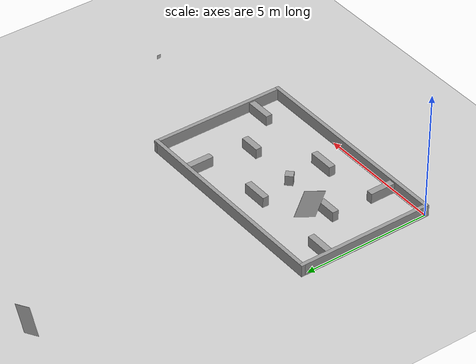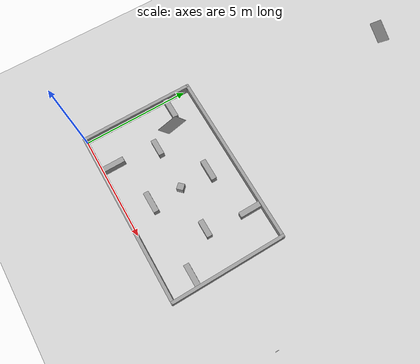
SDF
<sdf version="1.6">
 <world name="default">
  <light name="sun" type="directional">
   <pose>0 0 10 0 -0 0</pose>
   <diffuse>0.8 0.8 0.8 1</diffuse>
   <specular>0.1 0.1 0.1 1</specular>
   <attenuation>
    <range>1000</range>
    <constant>0.9</constant>
    <linear>0.01</linear>
    <quadratic>0.001</quadratic>
   </attenuation>
   <direction>-0.5 0.5 -1</direction>
  </light>
  <model name="ground_plane">
   <static>1</static>
   <link name="link">
    <collision name="collision">
     <geometry><plane><normal>0 0 1</normal><size>100 100</size></plane></geometry>
     <surface><friction><ode><mu>100</mu><mu2>50</mu2></ode></friction></surface>
    </collision>
    <visual name="visual">
     <cast_shadows>0</cast_shadows>
     <geometry><plane><normal>0 0 1</normal><size>100 100</size></plane></geometry>
     <material>
      <script><uri>file://media/materials/scripts/gazebo.material</uri><name>Gazebo/Grey</name></script>
     </material>
    </visual>
   </link>
  </model>
  <gravity>0 0 -9.8</gravity>
  <magnetic_field>6e-06 2.3e-05 -4.2e-05</magnetic_field>
  <atmosphere type="adiabatic"/>
  <physics name="default_physics" default="0" type="ode">
   <max_step_size>0.001</max_step_size>
   <real_time_factor>1</real_time_factor>
   <real_time_update_rate>1000</real_time_update_rate>
  </physics>
  <scene><ambient>0.4 0.4 0.4 1</ambient><background>0.7 0.7 0.7 1</background><shadows>1</shadows></scene>
  <spherical_coordinates>
   <surface_model>EARTH_WGS84</surface_model>
   <latitude_deg>0</latitude_deg>
   <longitude_deg>0</longitude_deg>
   <elevation>0</elevation>
   <heading_deg>0</heading_deg>
  </spherical_coordinates>
  <model name="2020map_originsize">
   <pose>4.125 2.61211 0 0 -0 0</pose>
   <link name="Wall_0">
    <collision name="Wall_0_Collision">
     <geometry><box><size>5.4 0.15 0.46</size></box></geometry>
     <pose>0 0 0.23 0 -0 0</pose>
    </collision>
    <visual name="Wall_0_Visual">
     <pose>0 0 0.23 0 -0 0</pose>
     <geometry><box><size>5.4 0.15 0.46</size></box></geometry>
     <material>
      <script><uri>file://media/materials/scripts/gazebo.material</uri><name>Gazebo/Grey</name></script>
      <ambient>1 1 1 1</ambient>
     </material>
    </visual>
    <pose>-4.125 0 0 0 0 -1.5708</pose>
   </link>
   <link name="Wall_1">
    <collision name="Wall_1_Collision">
     <geometry><box><size>8.4 0.15 0.46</size></box></geometry>
     <pose>0 0 0.23 0 -0 0</pose>
    </collision>
    <visual name="Wall_1_Visual">
     <pose>0 0 0.23 0 -0 0</pose>
     <geometry><box><size>8.4 0.15 0.46</size></box></geometry>
     <material>
      <script><uri>file://media/materials/scripts/gazebo.material</uri><name>Gazebo/Grey</name></script>
      <ambient>1 1 1 1</ambient>
     </material>
    </visual>
    <pose>0 -2.625 0 0 -0 0</pose>
   </link>
   <link name="Wall_11">
    <collision name="Wall_11_Collision">
     <geometry><box><size>1 0.25 0.4</size></box></geometry>
     <pose>0 0 0.2 0 -0 0</pose>
    </collision>
    <visual name="Wall_11_Visual">
     <pose>0 0 0.2 0 -0 0</pose>
     <geometry><box><size>1 0.25 0.4</size></box></geometry>
     <material>
      <script><uri>file://media/materials/scripts/gazebo.material</uri><name>Gazebo/Grey</name></script>
      <ambient>1 1 1 1</ambient>
     </material>
    </visual>
    <pose>-2.425 -2.05 0 0 -0 1.5708</pose>
   </link>
   <link name="Wall_13">
    <collision name="Wall_13_Collision">
     <geometry><box><size>1 0.25 0.4</size></box></geometry>
     <pose>0 0 0.2 0 -0 0</pose>
    </collision>
    <visual name="Wall_13_Visual">
     <pose>0 0 0.2 0 -0 0</pose>
     <geometry><box><size>1 0.25 0.4</size></box></geometry>
     <material>
      <script><uri>file://media/materials/scripts/gazebo.material</uri><name>Gazebo/Grey</name></script>
      <ambient>1 1 1 1</ambient>
     </material>
    </visual>
    <pose>-0.05 1.425 0 0 -0 0</pose>
   </link>
   <link name="Wall_15">
    <collision name="Wall_15_Collision">
     <geometry><box><size>1 0.25 0.4</size></box></geometry>
     <pose>0 0 0.2 0 -0 0</pose>
    </collision>
    <visual name="Wall_15_Visual">
     <pose>0 0 0.2 0 -0 0</pose>
     <geometry><box><size>1 0.25 0.4</size></box></geometry>
     <material>
      <script><uri>file://media/materials/scripts/gazebo.material</uri><name>Gazebo/Grey</name></script>
      <ambient>1 1 1 1</ambient>
     </material>
    </visual>
    <pose>-0.05 -1.425 0 0 -0 0</pose>
   </link>
   <link name="Wall_17">
    <collision name="Wall_17_Collision">
     <geometry><box><size>0.8 0.25 0.4</size></box></geometry>
     <pose>0 0 0.2 0 -0 0</pose>
    </collision>
    <visual name="Wall_17_Visual">
     <pose>0 0 0.2 0 -0 0</pose>
     <geometry><box><size>0.8 0.25 0.4</size></box></geometry>
     <material>
      <script><uri>file://media/materials/scripts/gazebo.material</uri><name>Gazebo/Grey</name></script>
      <ambient>1 1 1 1</ambient>
     </material>
    </visual>
    <pose>-2.15 0 0 0 -0 0</pose>
   </link>
   <link name="Wall_19">
    <collision name="Wall_19_Collision">
     <geometry><box><size>0.8 0.25 0.4</size></box></geometry>
     <pose>0 0 0.2 0 -0 0</pose>
    </collision>
    <visual name="Wall_19_Visual">
     <pose>0 0 0.2 0 -0 0</pose>
     <geometry><box><size>0.8 0.25 0.4</size></box></geometry>
     <material>
      <script><uri>file://media/materials/scripts/gazebo.material</uri><name>Gazebo/Grey</name></script>
      <ambient>1 1 1 1</ambient>
     </material>
    </visual>
    <pose>2.15 0 0 0 -0 0</pose>
   </link>
   <link name="Wall_2">
    <collision name="Wall_2_Collision">
     <geometry><box><size>5.4 0.15 0.46</size></box></geometry>
     <pose>0 0 0.23 0 -0 0</pose>
    </collision>
    <visual name="Wall_2_Visual">
     <pose>0 0 0.23 0 -0 0</pose>
     <geometry><box><size>5.4 0.15 0.46</size></box></geometry>
     <material>
      <script><uri>file://media/materials/scripts/gazebo.material</uri><name>Gazebo/Grey</name></script>
      <ambient>1 1 1 1</ambient>
     </material>
    </visual>
    <pose>4.125 0 0 0 -0 1.5708</pose>
   </link>
   <link name="Wall_21">
    <collision name="Wall_21_Collision">
     <geometry><box><size>0.303364 0.3 0.4</size></box></geometry>
     <pose>0 0 0.2 0 -0 0</pose>
    </collision>
    <visual name="Wall_21_Visual">
     <pose>0 0 0.2 0 -0 0</pose>
     <geometry><box><size>0.303364 0.3 0.4</size></box></geometry>
     <material>
      <script><uri>file://media/materials/scripts/gazebo.material</uri><name>Gazebo/Grey</name></script>
      <ambient>1 1 1 1</ambient>
     </material>
    </visual>
    <pose>0.001 0.001 0 0 -0 0.785398</pose>
   </link>
   <link name="Wall_3">
    <collision name="Wall_3_Collision">
     <geometry><box><size>8.4 0.15 0.46</size></box></geometry>
     <pose>0 0 0.23 0 -0 0</pose>
    </collision>
    <visual name="Wall_3_Visual">
     <pose>0 0 0.23 0 -0 0</pose>
     <geometry><box><size>8.4 0.15 0.46</size></box></geometry>
     <material>
      <script><uri>file://media/materials/scripts/gazebo.material</uri><name>Gazebo/Grey</name></script>
      <ambient>1 1 1 1</ambient>
     </material>
    </visual>
    <pose>0 2.625 0 0 -0 3.14159</pose>
   </link>
   <link name="Wall_5">
    <collision name="Wall_5_Collision">
     <geometry><box><size>1 0.25 0.4</size></box></geometry>
     <pose>0 0 0.2 0 -0 0</pose>
    </collision>
    <visual name="Wall_5_Visual">
     <pose>0 0 0.2 0 -0 0</pose>
     <geometry><box><size>1 0.25 0.4</size></box></geometry>
     <material>
      <script><uri>file://media/materials/scripts/gazebo.material</uri><name>Gazebo/Grey</name></script>
      <ambient>1 1 1 1</ambient>
     </material>
    </visual>
    <pose>-3.55 1.425 0 0 -0 0</pose>
   </link>
   <link name="Wall_7">
    <collision name="Wall_7_Collision">
     <geometry><box><size>1 0.25 0.4</size></box></geometry>
     <pose>0 0 0.2 0 -0 0</pose>
    </collision>
    <visual name="Wall_7_Visual">
     <pose>0 0 0.2 0 -0 0</pose>
     <geometry><box><size>1 0.25 0.4</size></box></geometry>
     <material>
      <script><uri>file://media/materials/scripts/gazebo.material</uri><name>Gazebo/Grey</name></script>
      <ambient>1 1 1 1</ambient>
     </material>
    </visual>
    <pose>2.425 2.05 0 0 0 -1.5708</pose>
   </link>
   <link name="Wall_9">
    <collision name="Wall_9_Collision">
     <geometry><box><size>1 0.25 0.4</size></box></geometry>
     <pose>0 0 0.2 0 -0 0</pose>
    </collision>
    <visual name="Wall_9_Visual">
     <pose>0 0 0.2 0 -0 0</pose>
     <geometry><box><size>1 0.25 0.4</size></box></geometry>
     <material>
      <script><uri>file://media/materials/scripts/gazebo.material</uri><name>Gazebo/Grey</name></script>
      <ambient>1 1 1 1</ambient>
     </material>
    </visual>
    <pose>3.55 -1.425 0 0 -0 3.14159</pose>
   </link>
   <static>1</static>
  </model>
  <model name="visualtag_14">
   <link name="main">
    <visual name="main_Visual">
     <geometry><box><size>0.15 0.15 0.01</size></box></geometry>
     <material>
      <script>
       <uri>model://visualtag_14/materials/scripts</uri>
       <uri>model://visualtag_14/materials/textures</uri>
       <name>visualtag_14</name>
      </script>
     </material>
    </visual>
   </link>
   <static>1</static>
   <pose>11.9296 2.58127 0.794172 3.14159 -1.56924 3.14159</pose>
  </model>
  <model name="visualtag_31">
   <link name="main">
    <visual name="main_Visual">
     <geometry><box><size>1 1 0.01</size></box></geometry>
     <material>
      <script>
       <uri>model://visualtag_31/materials/scripts</uri>
       <uri>model://visualtag_31/materials/textures</uri>
       <name>visualtag_31</name>
      </script>
     </material>
    </visual>
   </link>
   <pose>1.71227 3.61489 1.11614 -1.57605 1.13439 1.56604</pose>
  </model>
  <model name="visualtag_14_0">
   <link name="main">
    <visual name="main_Visual">
     <geometry><box><size>1 1 0.01</size></box></geometry>
     <material>
      <script>
       <uri>model://visualtag_14/materials/scripts</uri>
       <uri>model://visualtag_14/materials/textures</uri>
       <name>visualtag_14</name>
      </script>
     </material>
    </visual>
   </link>
   <static>1</static>
   <pose>2.46401 14.3169 1.01829 -1.57956 -1.08161 0.007736</pose>
  </model>
  <audio><device>default</device></audio>
 </world>
</sdf>
